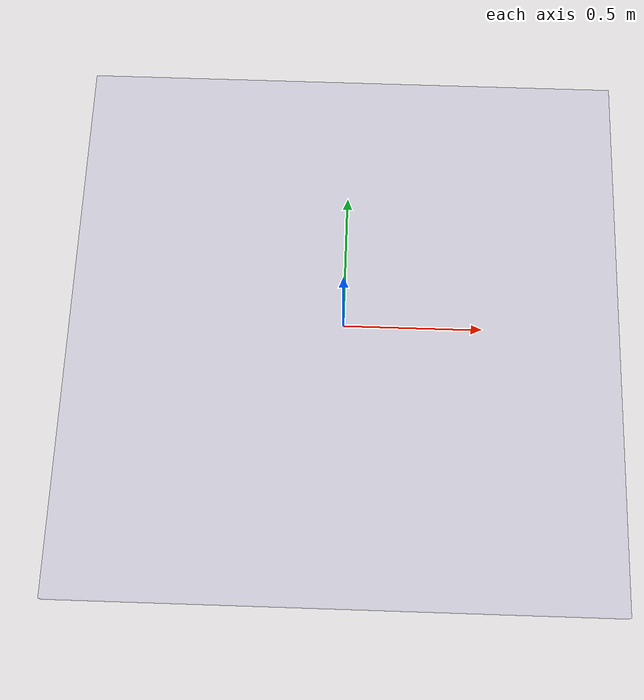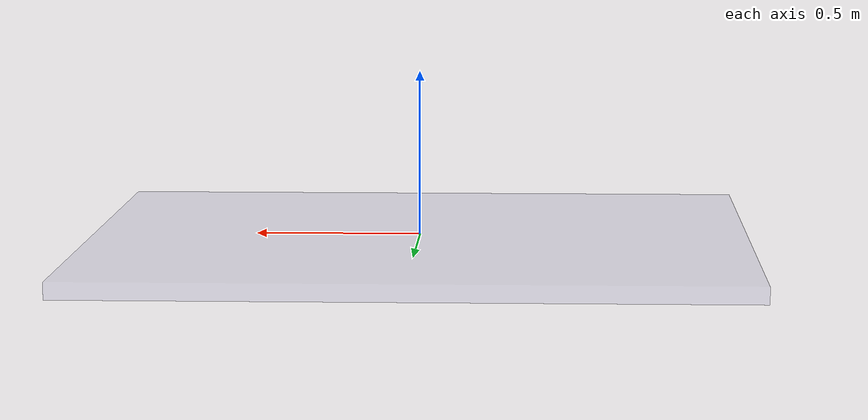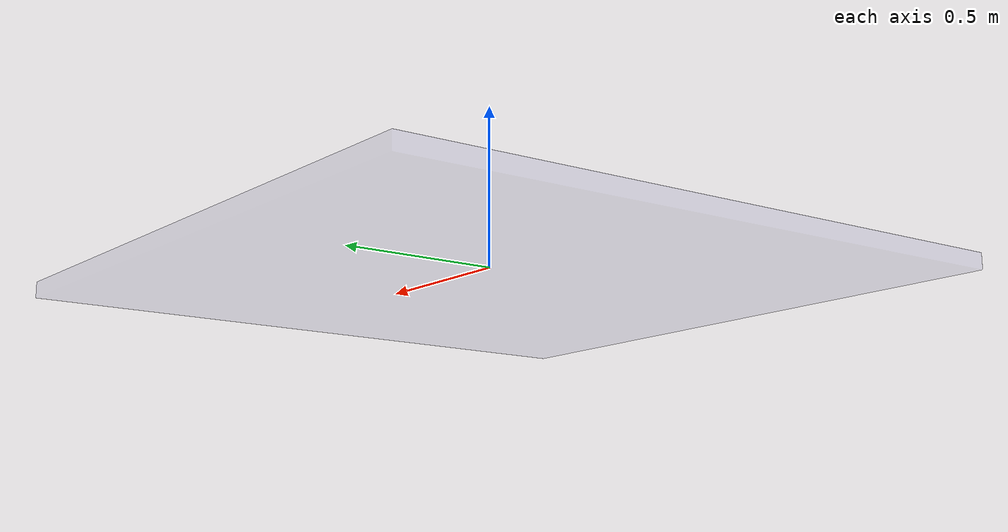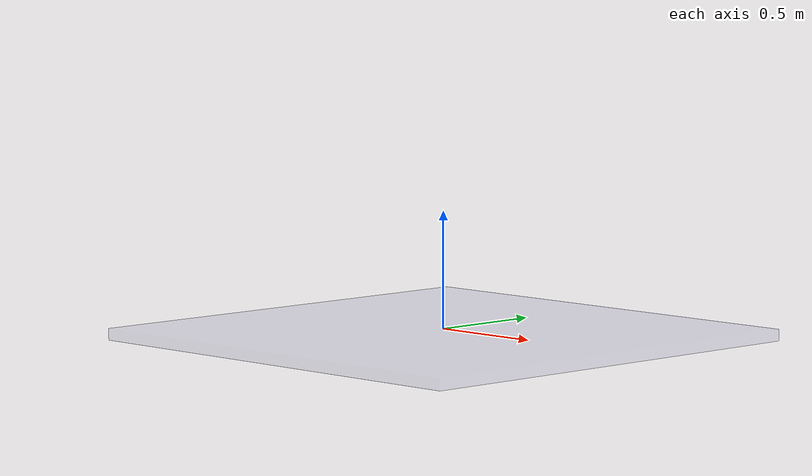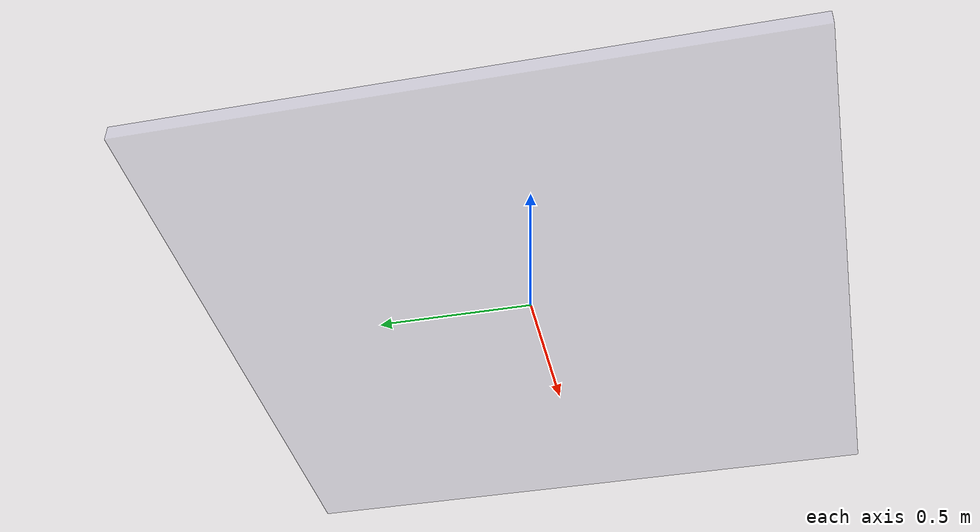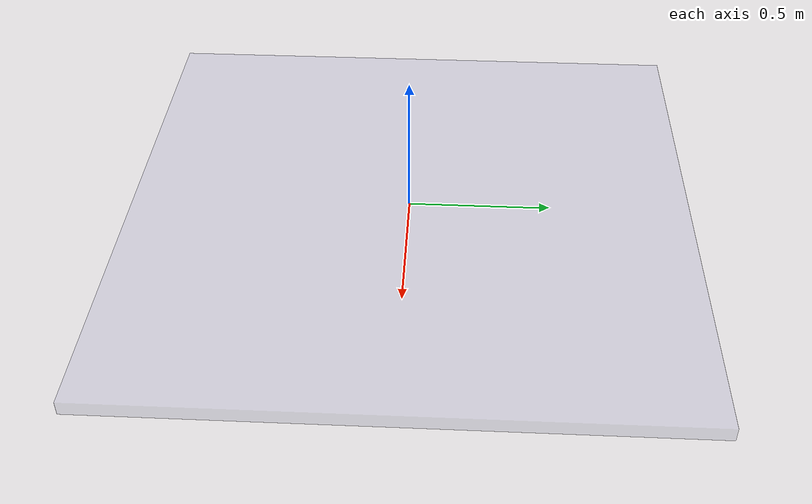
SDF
<?xml version="1.0"?>
<sdf version="1.7">
  <model name="table">
    <!--
    We use a 3 x3x0.1 m rectangular block to represent a rigid floor
    -->
    <link name="table">
      <pose>0 0 0 0 0 0</pose>
      <inertial>
        <pose>0 0 0 0 0 0</pose>
        <mass>1</mass>
      </inertial>
      <visual name="visual">
        <pose>0 0 -0.025 0 0 0</pose>
        <geometry>
          <box>
            <size>2 2 0.05</size>
          </box>
        </geometry>
        <material>
          <diffuse>0.5 0.5 0.7 0.2</diffuse>
        </material>
      </visual>
      <collision name="collision">
        <pose>0 0 -0.025 0 0 0</pose>
        <geometry>
          <box>
            <size>2 2 0.05</size>
          </box>
        </geometry>
        <drake:proximity_properties>
          <drake:rigid_hydroelastic/>
          <drake:mu_dynamic> 1 </drake:mu_dynamic>
          <drake:mu_static> 1 </drake:mu_static>
          <drake:hunt_crossley_dissipation>3.0</drake:hunt_crossley_dissipation>
          <drake:relaxation_time>0.1</drake:relaxation_time>
        </drake:proximity_properties>
      </collision>
    </link>
  </model>
</sdf>
